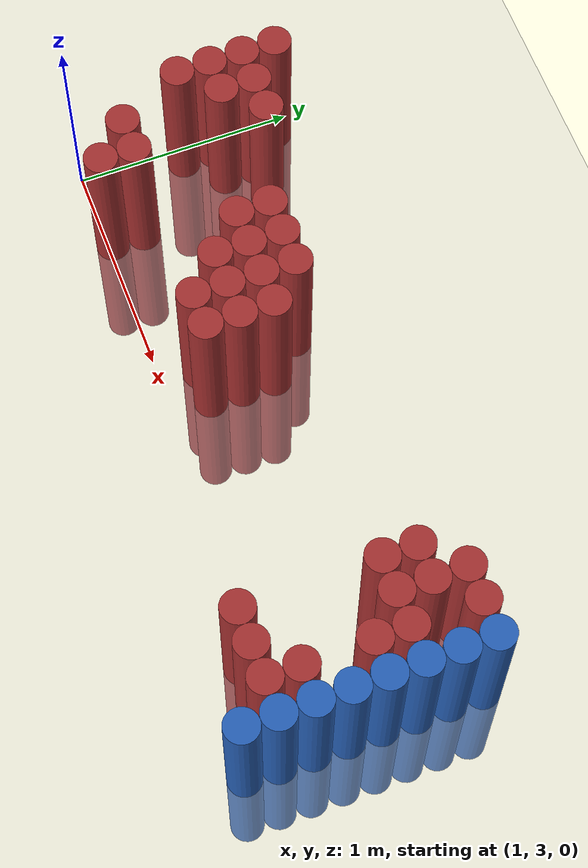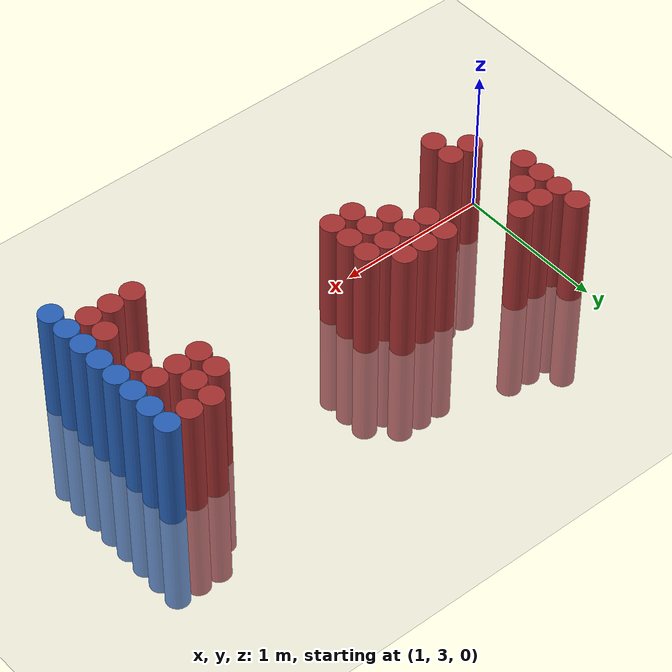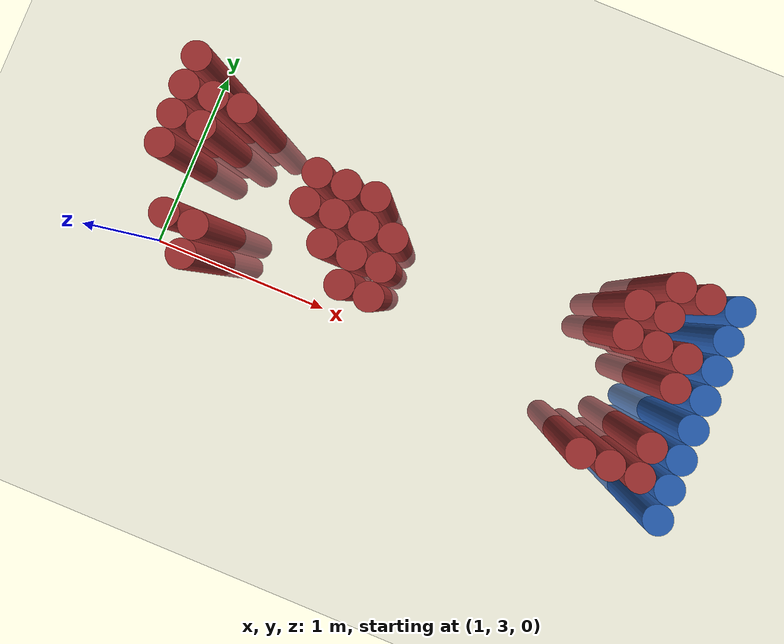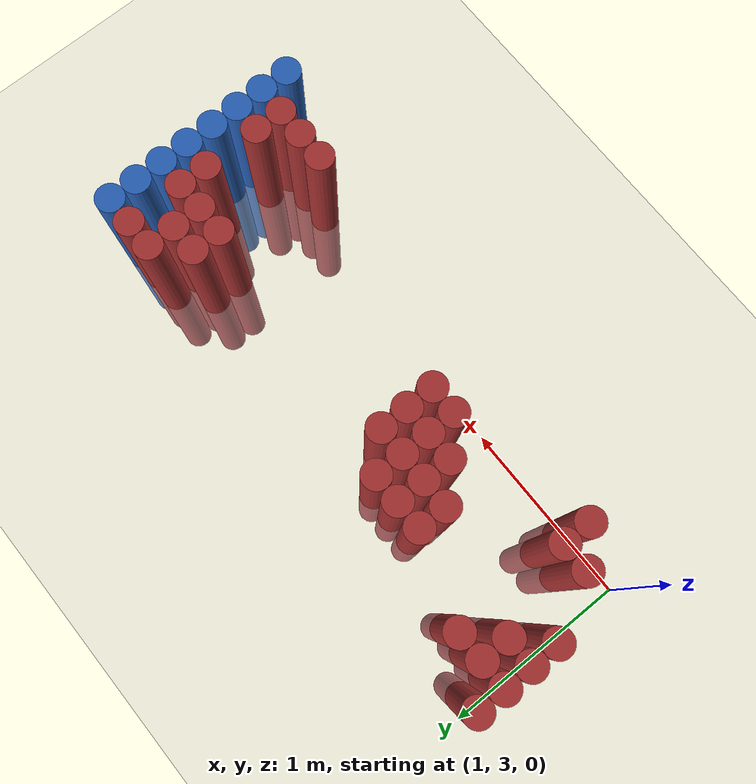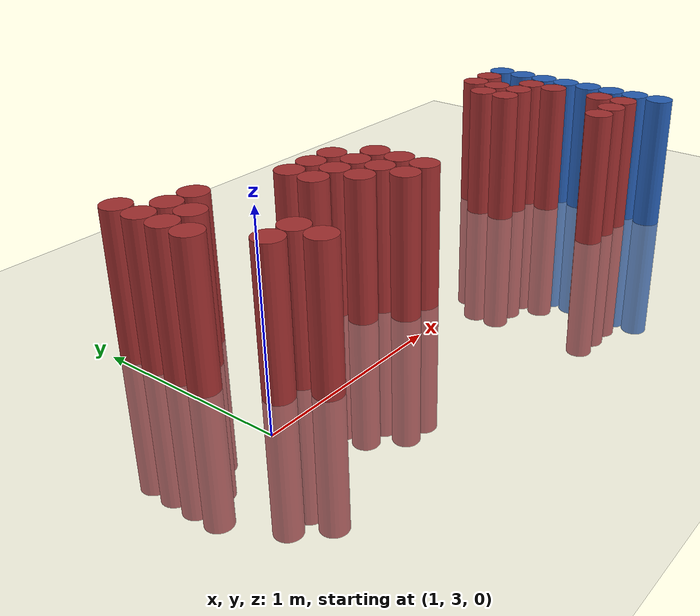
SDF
<sdf version="1.6">
 <world name="default">
  <model name="ground_plane">
   <static>1</static>
   <link name="link">
    <collision name="collision">
     <geometry><plane><normal>0 0 1</normal><size>100 100</size></plane></geometry>
     <surface><friction><ode><mu>100</mu><mu2>50</mu2></ode></friction></surface>
    </collision>
    <visual name="visual">
     <cast_shadows>0</cast_shadows>
     <geometry><plane><normal>0 0 1</normal><size>100 100</size></plane></geometry>
     <material>
      <script><uri>file://media/materials/scripts/gazebo.material</uri><name>Gazebo/Grey</name></script>
     </material>
    </visual>
   </link>
  </model>
  <model name="unit_cylinder_150">
   <static>1</static>
   <pose>3.925000 2.725000 0.000000 0.000000 0.000000 0.000000</pose>
   <link name="link">
    <inertial>
     <mass>1</mass>
     <inertia><ixx>0.145833</ixx><ixy>0</ixy><ixz>0</ixz><iyy>0.145833</iyy><iyz>0</iyz><izz>0.125</izz></inertia>
    </inertial>
    <collision name="collision">
     <geometry><cylinder><radius>0.075000</radius><length>1.5</length></cylinder></geometry>
    </collision>
    <visual name="visual">
     <geometry><cylinder><radius>0.075000</radius><length>1.5</length></cylinder></geometry>
     <material>
      <ambient>0.152000 0.379000 0.720000 1</ambient>
      <diffuse>0.152000 0.379000 0.720000 1</diffuse>
     </material>
     <material>
      <script><name>Gazebo/Grey</name><uri>file://media/materials/scripts/gazebo.material</uri></script>
     </material>
    </visual>
   </link>
  </model>
  <model name="unit_cylinder_152">
   <static>1</static>
   <pose>3.925000 2.875000 0.000000 0.000000 0.000000 0.000000</pose>
   <link name="link">
    <inertial>
     <mass>1</mass>
     <inertia><ixx>0.145833</ixx><ixy>0</ixy><ixz>0</ixz><iyy>0.145833</iyy><iyz>0</iyz><izz>0.125</izz></inertia>
    </inertial>
    <collision name="collision">
     <geometry><cylinder><radius>0.075000</radius><length>1.5</length></cylinder></geometry>
    </collision>
    <visual name="visual">
     <geometry><cylinder><radius>0.075000</radius><length>1.5</length></cylinder></geometry>
     <material>
      <ambient>0.152000 0.379000 0.720000 1</ambient>
      <diffuse>0.152000 0.379000 0.720000 1</diffuse>
     </material>
     <material>
      <script><name>Gazebo/Grey</name><uri>file://media/materials/scripts/gazebo.material</uri></script>
     </material>
    </visual>
   </link>
  </model>
  <model name="unit_cylinder_154">
   <static>1</static>
   <pose>3.925000 3.025000 0.000000 0.000000 0.000000 0.000000</pose>
   <link name="link">
    <inertial>
     <mass>1</mass>
     <inertia><ixx>0.145833</ixx><ixy>0</ixy><ixz>0</ixz><iyy>0.145833</iyy><iyz>0</iyz><izz>0.125</izz></inertia>
    </inertial>
    <collision name="collision">
     <geometry><cylinder><radius>0.075000</radius><length>1.5</length></cylinder></geometry>
    </collision>
    <visual name="visual">
     <geometry><cylinder><radius>0.075000</radius><length>1.5</length></cylinder></geometry>
     <material>
      <ambient>0.152000 0.379000 0.720000 1</ambient>
      <diffuse>0.152000 0.379000 0.720000 1</diffuse>
     </material>
     <material>
      <script><name>Gazebo/Grey</name><uri>file://media/materials/scripts/gazebo.material</uri></script>
     </material>
    </visual>
   </link>
  </model>
  <model name="unit_cylinder_156">
   <static>1</static>
   <pose>3.925000 3.175000 0.000000 0.000000 0.000000 0.000000</pose>
   <link name="link">
    <inertial>
     <mass>1</mass>
     <inertia><ixx>0.145833</ixx><ixy>0</ixy><ixz>0</ixz><iyy>0.145833</iyy><iyz>0</iyz><izz>0.125</izz></inertia>
    </inertial>
    <collision name="collision">
     <geometry><cylinder><radius>0.075000</radius><length>1.5</length></cylinder></geometry>
    </collision>
    <visual name="visual">
     <geometry><cylinder><radius>0.075000</radius><length>1.5</length></cylinder></geometry>
     <material>
      <ambient>0.152000 0.379000 0.720000 1</ambient>
      <diffuse>0.152000 0.379000 0.720000 1</diffuse>
     </material>
     <material>
      <script><name>Gazebo/Grey</name><uri>file://media/materials/scripts/gazebo.material</uri></script>
     </material>
    </visual>
   </link>
  </model>
  <model name="unit_cylinder_158">
   <static>1</static>
   <pose>3.925000 3.325000 0.000000 0.000000 0.000000 0.000000</pose>
   <link name="link">
    <inertial>
     <mass>1</mass>
     <inertia><ixx>0.145833</ixx><ixy>0</ixy><ixz>0</ixz><iyy>0.145833</iyy><iyz>0</iyz><izz>0.125</izz></inertia>
    </inertial>
    <collision name="collision">
     <geometry><cylinder><radius>0.075000</radius><length>1.5</length></cylinder></geometry>
    </collision>
    <visual name="visual">
     <geometry><cylinder><radius>0.075000</radius><length>1.5</length></cylinder></geometry>
     <material>
      <ambient>0.152000 0.379000 0.720000 1</ambient>
      <diffuse>0.152000 0.379000 0.720000 1</diffuse>
     </material>
     <material>
      <script><name>Gazebo/Grey</name><uri>file://media/materials/scripts/gazebo.material</uri></script>
     </material>
    </visual>
   </link>
  </model>
  <model name="unit_cylinder_160">
   <static>1</static>
   <pose>3.925000 3.475000 0.000000 0.000000 0.000000 0.000000</pose>
   <link name="link">
    <inertial>
     <mass>1</mass>
     <inertia><ixx>0.145833</ixx><ixy>0</ixy><ixz>0</ixz><iyy>0.145833</iyy><iyz>0</iyz><izz>0.125</izz></inertia>
    </inertial>
    <collision name="collision">
     <geometry><cylinder><radius>0.075000</radius><length>1.5</length></cylinder></geometry>
    </collision>
    <visual name="visual">
     <geometry><cylinder><radius>0.075000</radius><length>1.5</length></cylinder></geometry>
     <material>
      <ambient>0.152000 0.379000 0.720000 1</ambient>
      <diffuse>0.152000 0.379000 0.720000 1</diffuse>
     </material>
     <material>
      <script><name>Gazebo/Grey</name><uri>file://media/materials/scripts/gazebo.material</uri></script>
     </material>
    </visual>
   </link>
  </model>
  <model name="unit_cylinder_162">
   <static>1</static>
   <pose>3.925000 3.625000 0.000000 0.000000 0.000000 0.000000</pose>
   <link name="link">
    <inertial>
     <mass>1</mass>
     <inertia><ixx>0.145833</ixx><ixy>0</ixy><ixz>0</ixz><iyy>0.145833</iyy><iyz>0</iyz><izz>0.125</izz></inertia>
    </inertial>
    <collision name="collision">
     <geometry><cylinder><radius>0.075000</radius><length>1.5</length></cylinder></geometry>
    </collision>
    <visual name="visual">
     <geometry><cylinder><radius>0.075000</radius><length>1.5</length></cylinder></geometry>
     <material>
      <ambient>0.152000 0.379000 0.720000 1</ambient>
      <diffuse>0.152000 0.379000 0.720000 1</diffuse>
     </material>
     <material>
      <script><name>Gazebo/Grey</name><uri>file://media/materials/scripts/gazebo.material</uri></script>
     </material>
    </visual>
   </link>
  </model>
  <model name="unit_cylinder_164">
   <static>1</static>
   <pose>3.925000 3.775000 0.000000 0.000000 0.000000 0.000000</pose>
   <link name="link">
    <inertial>
     <mass>1</mass>
     <inertia><ixx>0.145833</ixx><ixy>0</ixy><ixz>0</ixz><iyy>0.145833</iyy><iyz>0</iyz><izz>0.125</izz></inertia>
    </inertial>
    <collision name="collision">
     <geometry><cylinder><radius>0.075000</radius><length>1.5</length></cylinder></geometry>
    </collision>
    <visual name="visual">
     <geometry><cylinder><radius>0.075000</radius><length>1.5</length></cylinder></geometry>
     <material>
      <ambient>0.152000 0.379000 0.720000 1</ambient>
      <diffuse>0.152000 0.379000 0.720000 1</diffuse>
     </material>
     <material>
      <script><name>Gazebo/Grey</name><uri>file://media/materials/scripts/gazebo.material</uri></script>
     </material>
    </visual>
   </link>
  </model>
  <model name="unit_cylinder_375">
   <static>1</static>
   <pose>1.075000 3.475000 0.000000 0.000000 0.000000 0.000000</pose>
   <link name="link">
    <inertial>
     <mass>1</mass>
     <inertia><ixx>0.145833</ixx><ixy>0</ixy><ixz>0</ixz><iyy>0.145833</iyy><iyz>0</iyz><izz>0.125</izz></inertia>
    </inertial>
    <collision name="collision">
     <geometry><cylinder><radius>0.075000</radius><length>1.5</length></cylinder></geometry>
    </collision>
    <visual name="visual">
     <geometry><cylinder><radius>0.075000</radius><length>1.5</length></cylinder></geometry>
     <material>
      <ambient>0.648000 0.192000 0.192000 1</ambient>
      <diffuse>0.648000 0.192000 0.192000 1</diffuse>
     </material>
     <material>
      <script><name>Gazebo/Grey</name><uri>file://media/materials/scripts/gazebo.material</uri></script>
     </material>
    </visual>
   </link>
  </model>
  <model name="unit_cylinder_376">
   <static>1</static>
   <pose>1.075000 3.625000 0.000000 0.000000 0.000000 0.000000</pose>
   <link name="link">
    <inertial>
     <mass>1</mass>
     <inertia><ixx>0.145833</ixx><ixy>0</ixy><ixz>0</ixz><iyy>0.145833</iyy><iyz>0</iyz><izz>0.125</izz></inertia>
    </inertial>
    <collision name="collision">
     <geometry><cylinder><radius>0.075000</radius><length>1.5</length></cylinder></geometry>
    </collision>
    <visual name="visual">
     <geometry><cylinder><radius>0.075000</radius><length>1.5</length></cylinder></geometry>
     <material>
      <ambient>0.648000 0.192000 0.192000 1</ambient>
      <diffuse>0.648000 0.192000 0.192000 1</diffuse>
     </material>
     <material>
      <script><name>Gazebo/Grey</name><uri>file://media/materials/scripts/gazebo.material</uri></script>
     </material>
    </visual>
   </link>
  </model>
  <model name="unit_cylinder_377">
   <static>1</static>
   <pose>1.075000 3.775000 0.000000 0.000000 0.000000 0.000000</pose>
   <link name="link">
    <inertial>
     <mass>1</mass>
     <inertia><ixx>0.145833</ixx><ixy>0</ixy><ixz>0</ixz><iyy>0.145833</iyy><iyz>0</iyz><izz>0.125</izz></inertia>
    </inertial>
    <collision name="collision">
     <geometry><cylinder><radius>0.075000</radius><length>1.5</length></cylinder></geometry>
    </collision>
    <visual name="visual">
     <geometry><cylinder><radius>0.075000</radius><length>1.5</length></cylinder></geometry>
     <material>
      <ambient>0.648000 0.192000 0.192000 1</ambient>
      <diffuse>0.648000 0.192000 0.192000 1</diffuse>
     </material>
     <material>
      <script><name>Gazebo/Grey</name><uri>file://media/materials/scripts/gazebo.material</uri></script>
     </material>
    </visual>
   </link>
  </model>
  <model name="unit_cylinder_378">
   <static>1</static>
   <pose>1.075000 3.925000 0.000000 0.000000 0.000000 0.000000</pose>
   <link name="link">
    <inertial>
     <mass>1</mass>
     <inertia><ixx>0.145833</ixx><ixy>0</ixy><ixz>0</ixz><iyy>0.145833</iyy><iyz>0</iyz><izz>0.125</izz></inertia>
    </inertial>
    <collision name="collision">
     <geometry><cylinder><radius>0.075000</radius><length>1.5</length></cylinder></geometry>
    </collision>
    <visual name="visual">
     <geometry><cylinder><radius>0.075000</radius><length>1.5</length></cylinder></geometry>
     <material>
      <ambient>0.648000 0.192000 0.192000 1</ambient>
      <diffuse>0.648000 0.192000 0.192000 1</diffuse>
     </material>
     <material>
      <script><name>Gazebo/Grey</name><uri>file://media/materials/scripts/gazebo.material</uri></script>
     </material>
    </visual>
   </link>
  </model>
  <model name="unit_cylinder_384">
   <static>1</static>
   <pose>1.225000 3.175000 0.000000 0.000000 0.000000 0.000000</pose>
   <link name="link">
    <inertial>
     <mass>1</mass>
     <inertia><ixx>0.145833</ixx><ixy>0</ixy><ixz>0</ixz><iyy>0.145833</iyy><iyz>0</iyz><izz>0.125</izz></inertia>
    </inertial>
    <collision name="collision">
     <geometry><cylinder><radius>0.075000</radius><length>1.5</length></cylinder></geometry>
    </collision>
    <visual name="visual">
     <geometry><cylinder><radius>0.075000</radius><length>1.5</length></cylinder></geometry>
     <material>
      <ambient>0.648000 0.192000 0.192000 1</ambient>
      <diffuse>0.648000 0.192000 0.192000 1</diffuse>
     </material>
     <material>
      <script><name>Gazebo/Grey</name><uri>file://media/materials/scripts/gazebo.material</uri></script>
     </material>
    </visual>
   </link>
  </model>
  <model name="unit_cylinder_385">
   <static>1</static>
   <pose>1.225000 3.625000 0.000000 0.000000 0.000000 0.000000</pose>
   <link name="link">
    <inertial>
     <mass>1</mass>
     <inertia><ixx>0.145833</ixx><ixy>0</ixy><ixz>0</ixz><iyy>0.145833</iyy><iyz>0</iyz><izz>0.125</izz></inertia>
    </inertial>
    <collision name="collision">
     <geometry><cylinder><radius>0.075000</radius><length>1.5</length></cylinder></geometry>
    </collision>
    <visual name="visual">
     <geometry><cylinder><radius>0.075000</radius><length>1.5</length></cylinder></geometry>
     <material>
      <ambient>0.648000 0.192000 0.192000 1</ambient>
      <diffuse>0.648000 0.192000 0.192000 1</diffuse>
     </material>
     <material>
      <script><name>Gazebo/Grey</name><uri>file://media/materials/scripts/gazebo.material</uri></script>
     </material>
    </visual>
   </link>
  </model>
  <model name="unit_cylinder_386">
   <static>1</static>
   <pose>1.225000 3.775000 0.000000 0.000000 0.000000 0.000000</pose>
   <link name="link">
    <inertial>
     <mass>1</mass>
     <inertia><ixx>0.145833</ixx><ixy>0</ixy><ixz>0</ixz><iyy>0.145833</iyy><iyz>0</iyz><izz>0.125</izz></inertia>
    </inertial>
    <collision name="collision">
     <geometry><cylinder><radius>0.075000</radius><length>1.5</length></cylinder></geometry>
    </collision>
    <visual name="visual">
     <geometry><cylinder><radius>0.075000</radius><length>1.5</length></cylinder></geometry>
     <material>
      <ambient>0.648000 0.192000 0.192000 1</ambient>
      <diffuse>0.648000 0.192000 0.192000 1</diffuse>
     </material>
     <material>
      <script><name>Gazebo/Grey</name><uri>file://media/materials/scripts/gazebo.material</uri></script>
     </material>
    </visual>
   </link>
  </model>
  <model name="unit_cylinder_394">
   <static>1</static>
   <pose>1.375000 3.025000 0.000000 0.000000 0.000000 0.000000</pose>
   <link name="link">
    <inertial>
     <mass>1</mass>
     <inertia><ixx>0.145833</ixx><ixy>0</ixy><ixz>0</ixz><iyy>0.145833</iyy><iyz>0</iyz><izz>0.125</izz></inertia>
    </inertial>
    <collision name="collision">
     <geometry><cylinder><radius>0.075000</radius><length>1.5</length></cylinder></geometry>
    </collision>
    <visual name="visual">
     <geometry><cylinder><radius>0.075000</radius><length>1.5</length></cylinder></geometry>
     <material>
      <ambient>0.648000 0.192000 0.192000 1</ambient>
      <diffuse>0.648000 0.192000 0.192000 1</diffuse>
     </material>
     <material>
      <script><name>Gazebo/Grey</name><uri>file://media/materials/scripts/gazebo.material</uri></script>
     </material>
    </visual>
   </link>
  </model>
  <model name="unit_cylinder_395">
   <static>1</static>
   <pose>1.375000 3.175000 0.000000 0.000000 0.000000 0.000000</pose>
   <link name="link">
    <inertial>
     <mass>1</mass>
     <inertia><ixx>0.145833</ixx><ixy>0</ixy><ixz>0</ixz><iyy>0.145833</iyy><iyz>0</iyz><izz>0.125</izz></inertia>
    </inertial>
    <collision name="collision">
     <geometry><cylinder><radius>0.075000</radius><length>1.5</length></cylinder></geometry>
    </collision>
    <visual name="visual">
     <geometry><cylinder><radius>0.075000</radius><length>1.5</length></cylinder></geometry>
     <material>
      <ambient>0.648000 0.192000 0.192000 1</ambient>
      <diffuse>0.648000 0.192000 0.192000 1</diffuse>
     </material>
     <material>
      <script><name>Gazebo/Grey</name><uri>file://media/materials/scripts/gazebo.material</uri></script>
     </material>
    </visual>
   </link>
  </model>
  <model name="unit_cylinder_396">
   <static>1</static>
   <pose>1.375000 3.775000 0.000000 0.000000 0.000000 0.000000</pose>
   <link name="link">
    <inertial>
     <mass>1</mass>
     <inertia><ixx>0.145833</ixx><ixy>0</ixy><ixz>0</ixz><iyy>0.145833</iyy><iyz>0</iyz><izz>0.125</izz></inertia>
    </inertial>
    <collision name="collision">
     <geometry><cylinder><radius>0.075000</radius><length>1.5</length></cylinder></geometry>
    </collision>
    <visual name="visual">
     <geometry><cylinder><radius>0.075000</radius><length>1.5</length></cylinder></geometry>
     <material>
      <ambient>0.648000 0.192000 0.192000 1</ambient>
      <diffuse>0.648000 0.192000 0.192000 1</diffuse>
     </material>
     <material>
      <script><name>Gazebo/Grey</name><uri>file://media/materials/scripts/gazebo.material</uri></script>
     </material>
    </visual>
   </link>
  </model>
  <model name="unit_cylinder_414">
   <static>1</static>
   <pose>1.825000 3.475000 0.000000 0.000000 0.000000 0.000000</pose>
   <link name="link">
    <inertial>
     <mass>1</mass>
     <inertia><ixx>0.145833</ixx><ixy>0</ixy><ixz>0</ixz><iyy>0.145833</iyy><iyz>0</iyz><izz>0.125</izz></inertia>
    </inertial>
    <collision name="collision">
     <geometry><cylinder><radius>0.075000</radius><length>1.5</length></cylinder></geometry>
    </collision>
    <visual name="visual">
     <geometry><cylinder><radius>0.075000</radius><length>1.5</length></cylinder></geometry>
     <material>
      <ambient>0.648000 0.192000 0.192000 1</ambient>
      <diffuse>0.648000 0.192000 0.192000 1</diffuse>
     </material>
     <material>
      <script><name>Gazebo/Grey</name><uri>file://media/materials/scripts/gazebo.material</uri></script>
     </material>
    </visual>
   </link>
  </model>
  <model name="unit_cylinder_415">
   <static>1</static>
   <pose>1.825000 3.625000 0.000000 0.000000 0.000000 0.000000</pose>
   <link name="link">
    <inertial>
     <mass>1</mass>
     <inertia><ixx>0.145833</ixx><ixy>0</ixy><ixz>0</ixz><iyy>0.145833</iyy><iyz>0</iyz><izz>0.125</izz></inertia>
    </inertial>
    <collision name="collision">
     <geometry><cylinder><radius>0.075000</radius><length>1.5</length></cylinder></geometry>
    </collision>
    <visual name="visual">
     <geometry><cylinder><radius>0.075000</radius><length>1.5</length></cylinder></geometry>
     <material>
      <ambient>0.648000 0.192000 0.192000 1</ambient>
      <diffuse>0.648000 0.192000 0.192000 1</diffuse>
     </material>
     <material>
      <script><name>Gazebo/Grey</name><uri>file://media/materials/scripts/gazebo.material</uri></script>
     </material>
    </visual>
   </link>
  </model>
  <model name="unit_cylinder_422">
   <static>1</static>
   <pose>1.975000 3.325000 0.000000 0.000000 0.000000 0.000000</pose>
   <link name="link">
    <inertial>
     <mass>1</mass>
     <inertia><ixx>0.145833</ixx><ixy>0</ixy><ixz>0</ixz><iyy>0.145833</iyy><iyz>0</iyz><izz>0.125</izz></inertia>
    </inertial>
    <collision name="collision">
     <geometry><cylinder><radius>0.075000</radius><length>1.5</length></cylinder></geometry>
    </collision>
    <visual name="visual">
     <geometry><cylinder><radius>0.075000</radius><length>1.5</length></cylinder></geometry>
     <material>
      <ambient>0.648000 0.192000 0.192000 1</ambient>
      <diffuse>0.648000 0.192000 0.192000 1</diffuse>
     </material>
     <material>
      <script><name>Gazebo/Grey</name><uri>file://media/materials/scripts/gazebo.material</uri></script>
     </material>
    </visual>
   </link>
  </model>
  <model name="unit_cylinder_423">
   <static>1</static>
   <pose>1.975000 3.475000 0.000000 0.000000 0.000000 0.000000</pose>
   <link name="link">
    <inertial>
     <mass>1</mass>
     <inertia><ixx>0.145833</ixx><ixy>0</ixy><ixz>0</ixz><iyy>0.145833</iyy><iyz>0</iyz><izz>0.125</izz></inertia>
    </inertial>
    <collision name="collision">
     <geometry><cylinder><radius>0.075000</radius><length>1.5</length></cylinder></geometry>
    </collision>
    <visual name="visual">
     <geometry><cylinder><radius>0.075000</radius><length>1.5</length></cylinder></geometry>
     <material>
      <ambient>0.648000 0.192000 0.192000 1</ambient>
      <diffuse>0.648000 0.192000 0.192000 1</diffuse>
     </material>
     <material>
      <script><name>Gazebo/Grey</name><uri>file://media/materials/scripts/gazebo.material</uri></script>
     </material>
    </visual>
   </link>
  </model>
  <model name="unit_cylinder_424">
   <static>1</static>
   <pose>1.975000 3.625000 0.000000 0.000000 0.000000 0.000000</pose>
   <link name="link">
    <inertial>
     <mass>1</mass>
     <inertia><ixx>0.145833</ixx><ixy>0</ixy><ixz>0</ixz><iyy>0.145833</iyy><iyz>0</iyz><izz>0.125</izz></inertia>
    </inertial>
    <collision name="collision">
     <geometry><cylinder><radius>0.075000</radius><length>1.5</length></cylinder></geometry>
    </collision>
    <visual name="visual">
     <geometry><cylinder><radius>0.075000</radius><length>1.5</length></cylinder></geometry>
     <material>
      <ambient>0.648000 0.192000 0.192000 1</ambient>
      <diffuse>0.648000 0.192000 0.192000 1</diffuse>
     </material>
     <material>
      <script><name>Gazebo/Grey</name><uri>file://media/materials/scripts/gazebo.material</uri></script>
     </material>
    </visual>
   </link>
  </model>
  <model name="unit_cylinder_428">
   <static>1</static>
   <pose>2.125000 3.175000 0.000000 0.000000 0.000000 0.000000</pose>
   <link name="link">
    <inertial>
     <mass>1</mass>
     <inertia><ixx>0.145833</ixx><ixy>0</ixy><ixz>0</ixz><iyy>0.145833</iyy><iyz>0</iyz><izz>0.125</izz></inertia>
    </inertial>
    <collision name="collision">
     <geometry><cylinder><radius>0.075000</radius><length>1.5</length></cylinder></geometry>
    </collision>
    <visual name="visual">
     <geometry><cylinder><radius>0.075000</radius><length>1.5</length></cylinder></geometry>
     <material>
      <ambient>0.648000 0.192000 0.192000 1</ambient>
      <diffuse>0.648000 0.192000 0.192000 1</diffuse>
     </material>
     <material>
      <script><name>Gazebo/Grey</name><uri>file://media/materials/scripts/gazebo.material</uri></script>
     </material>
    </visual>
   </link>
  </model>
  <model name="unit_cylinder_429">
   <static>1</static>
   <pose>2.125000 3.325000 0.000000 0.000000 0.000000 0.000000</pose>
   <link name="link">
    <inertial>
     <mass>1</mass>
     <inertia><ixx>0.145833</ixx><ixy>0</ixy><ixz>0</ixz><iyy>0.145833</iyy><iyz>0</iyz><izz>0.125</izz></inertia>
    </inertial>
    <collision name="collision">
     <geometry><cylinder><radius>0.075000</radius><length>1.5</length></cylinder></geometry>
    </collision>
    <visual name="visual">
     <geometry><cylinder><radius>0.075000</radius><length>1.5</length></cylinder></geometry>
     <material>
      <ambient>0.648000 0.192000 0.192000 1</ambient>
      <diffuse>0.648000 0.192000 0.192000 1</diffuse>
     </material>
     <material>
      <script><name>Gazebo/Grey</name><uri>file://media/materials/scripts/gazebo.material</uri></script>
     </material>
    </visual>
   </link>
  </model>
  <model name="unit_cylinder_430">
   <static>1</static>
   <pose>2.125000 3.475000 0.000000 0.000000 0.000000 0.000000</pose>
   <link name="link">
    <inertial>
     <mass>1</mass>
     <inertia><ixx>0.145833</ixx><ixy>0</ixy><ixz>0</ixz><iyy>0.145833</iyy><iyz>0</iyz><izz>0.125</izz></inertia>
    </inertial>
    <collision name="collision">
     <geometry><cylinder><radius>0.075000</radius><length>1.5</length></cylinder></geometry>
    </collision>
    <visual name="visual">
     <geometry><cylinder><radius>0.075000</radius><length>1.5</length></cylinder></geometry>
     <material>
      <ambient>0.648000 0.192000 0.192000 1</ambient>
      <diffuse>0.648000 0.192000 0.192000 1</diffuse>
     </material>
     <material>
      <script><name>Gazebo/Grey</name><uri>file://media/materials/scripts/gazebo.material</uri></script>
     </material>
    </visual>
   </link>
  </model>
  <model name="unit_cylinder_431">
   <static>1</static>
   <pose>2.125000 3.625000 0.000000 0.000000 0.000000 0.000000</pose>
   <link name="link">
    <inertial>
     <mass>1</mass>
     <inertia><ixx>0.145833</ixx><ixy>0</ixy><ixz>0</ixz><iyy>0.145833</iyy><iyz>0</iyz><izz>0.125</izz></inertia>
    </inertial>
    <collision name="collision">
     <geometry><cylinder><radius>0.075000</radius><length>1.5</length></cylinder></geometry>
    </collision>
    <visual name="visual">
     <geometry><cylinder><radius>0.075000</radius><length>1.5</length></cylinder></geometry>
     <material>
      <ambient>0.648000 0.192000 0.192000 1</ambient>
      <diffuse>0.648000 0.192000 0.192000 1</diffuse>
     </material>
     <material>
      <script><name>Gazebo/Grey</name><uri>file://media/materials/scripts/gazebo.material</uri></script>
     </material>
    </visual>
   </link>
  </model>
  <model name="unit_cylinder_435">
   <static>1</static>
   <pose>2.275000 3.175000 0.000000 0.000000 0.000000 0.000000</pose>
   <link name="link">
    <inertial>
     <mass>1</mass>
     <inertia><ixx>0.145833</ixx><ixy>0</ixy><ixz>0</ixz><iyy>0.145833</iyy><iyz>0</iyz><izz>0.125</izz></inertia>
    </inertial>
    <collision name="collision">
     <geometry><cylinder><radius>0.075000</radius><length>1.5</length></cylinder></geometry>
    </collision>
    <visual name="visual">
     <geometry><cylinder><radius>0.075000</radius><length>1.5</length></cylinder></geometry>
     <material>
      <ambient>0.648000 0.192000 0.192000 1</ambient>
      <diffuse>0.648000 0.192000 0.192000 1</diffuse>
     </material>
     <material>
      <script><name>Gazebo/Grey</name><uri>file://media/materials/scripts/gazebo.material</uri></script>
     </material>
    </visual>
   </link>
  </model>
  <model name="unit_cylinder_436">
   <static>1</static>
   <pose>2.275000 3.325000 0.000000 0.000000 0.000000 0.000000</pose>
   <link name="link">
    <inertial>
     <mass>1</mass>
     <inertia><ixx>0.145833</ixx><ixy>0</ixy><ixz>0</ixz><iyy>0.145833</iyy><iyz>0</iyz><izz>0.125</izz></inertia>
    </inertial>
    <collision name="collision">
     <geometry><cylinder><radius>0.075000</radius><length>1.5</length></cylinder></geometry>
    </collision>
    <visual name="visual">
     <geometry><cylinder><radius>0.075000</radius><length>1.5</length></cylinder></geometry>
     <material>
      <ambient>0.648000 0.192000 0.192000 1</ambient>
      <diffuse>0.648000 0.192000 0.192000 1</diffuse>
     </material>
     <material>
      <script><name>Gazebo/Grey</name><uri>file://media/materials/scripts/gazebo.material</uri></script>
     </material>
    </visual>
   </link>
  </model>
  <model name="unit_cylinder_437">
   <static>1</static>
   <pose>2.275000 3.475000 0.000000 0.000000 0.000000 0.000000</pose>
   <link name="link">
    <inertial>
     <mass>1</mass>
     <inertia><ixx>0.145833</ixx><ixy>0</ixy><ixz>0</ixz><iyy>0.145833</iyy><iyz>0</iyz><izz>0.125</izz></inertia>
    </inertial>
    <collision name="collision">
     <geometry><cylinder><radius>0.075000</radius><length>1.5</length></cylinder></geometry>
    </collision>
    <visual name="visual">
     <geometry><cylinder><radius>0.075000</radius><length>1.5</length></cylinder></geometry>
     <material>
      <ambient>0.648000 0.192000 0.192000 1</ambient>
      <diffuse>0.648000 0.192000 0.192000 1</diffuse>
     </material>
     <material>
      <script><name>Gazebo/Grey</name><uri>file://media/materials/scripts/gazebo.material</uri></script>
     </material>
    </visual>
   </link>
  </model>
  <model name="unit_cylinder_462">
   <static>1</static>
   <pose>3.475000 2.875000 0.000000 0.000000 0.000000 0.000000</pose>
   <link name="link">
    <inertial>
     <mass>1</mass>
     <inertia><ixx>0.145833</ixx><ixy>0</ixy><ixz>0</ixz><iyy>0.145833</iyy><iyz>0</iyz><izz>0.125</izz></inertia>
    </inertial>
    <collision name="collision">
     <geometry><cylinder><radius>0.075000</radius><length>1.5</length></cylinder></geometry>
    </collision>
    <visual name="visual">
     <geometry><cylinder><radius>0.075000</radius><length>1.5</length></cylinder></geometry>
     <material>
      <ambient>0.648000 0.192000 0.192000 1</ambient>
      <diffuse>0.648000 0.192000 0.192000 1</diffuse>
     </material>
     <material>
      <script><name>Gazebo/Grey</name><uri>file://media/materials/scripts/gazebo.material</uri></script>
     </material>
    </visual>
   </link>
  </model>
  <model name="unit_cylinder_463">
   <static>1</static>
   <pose>3.475000 3.475000 0.000000 0.000000 0.000000 0.000000</pose>
   <link name="link">
    <inertial>
     <mass>1</mass>
     <inertia><ixx>0.145833</ixx><ixy>0</ixy><ixz>0</ixz><iyy>0.145833</iyy><iyz>0</iyz><izz>0.125</izz></inertia>
    </inertial>
    <collision name="collision">
     <geometry><cylinder><radius>0.075000</radius><length>1.5</length></cylinder></geometry>
    </collision>
    <visual name="visual">
     <geometry><cylinder><radius>0.075000</radius><length>1.5</length></cylinder></geometry>
     <material>
      <ambient>0.648000 0.192000 0.192000 1</ambient>
      <diffuse>0.648000 0.192000 0.192000 1</diffuse>
     </material>
     <material>
      <script><name>Gazebo/Grey</name><uri>file://media/materials/scripts/gazebo.material</uri></script>
     </material>
    </visual>
   </link>
  </model>
  <model name="unit_cylinder_464">
   <static>1</static>
   <pose>3.475000 3.625000 0.000000 0.000000 0.000000 0.000000</pose>
   <link name="link">
    <inertial>
     <mass>1</mass>
     <inertia><ixx>0.145833</ixx><ixy>0</ixy><ixz>0</ixz><iyy>0.145833</iyy><iyz>0</iyz><izz>0.125</izz></inertia>
    </inertial>
    <collision name="collision">
     <geometry><cylinder><radius>0.075000</radius><length>1.5</length></cylinder></geometry>
    </collision>
    <visual name="visual">
     <geometry><cylinder><radius>0.075000</radius><length>1.5</length></cylinder></geometry>
     <material>
      <ambient>0.648000 0.192000 0.192000 1</ambient>
      <diffuse>0.648000 0.192000 0.192000 1</diffuse>
     </material>
     <material>
      <script><name>Gazebo/Grey</name><uri>file://media/materials/scripts/gazebo.material</uri></script>
     </material>
    </visual>
   </link>
  </model>
  <model name="unit_cylinder_473">
   <static>1</static>
   <pose>3.625000 2.875000 0.000000 0.000000 0.000000 0.000000</pose>
   <link name="link">
    <inertial>
     <mass>1</mass>
     <inertia><ixx>0.145833</ixx><ixy>0</ixy><ixz>0</ixz><iyy>0.145833</iyy><iyz>0</iyz><izz>0.125</izz></inertia>
    </inertial>
    <collision name="collision">
     <geometry><cylinder><radius>0.075000</radius><length>1.5</length></cylinder></geometry>
    </collision>
    <visual name="visual">
     <geometry><cylinder><radius>0.075000</radius><length>1.5</length></cylinder></geometry>
     <material>
      <ambient>0.648000 0.192000 0.192000 1</ambient>
      <diffuse>0.648000 0.192000 0.192000 1</diffuse>
     </material>
     <material>
      <script><name>Gazebo/Grey</name><uri>file://media/materials/scripts/gazebo.material</uri></script>
     </material>
    </visual>
   </link>
  </model>
  <model name="unit_cylinder_474">
   <static>1</static>
   <pose>3.625000 3.475000 0.000000 0.000000 0.000000 0.000000</pose>
   <link name="link">
    <inertial>
     <mass>1</mass>
     <inertia><ixx>0.145833</ixx><ixy>0</ixy><ixz>0</ixz><iyy>0.145833</iyy><iyz>0</iyz><izz>0.125</izz></inertia>
    </inertial>
    <collision name="collision">
     <geometry><cylinder><radius>0.075000</radius><length>1.5</length></cylinder></geometry>
    </collision>
    <visual name="visual">
     <geometry><cylinder><radius>0.075000</radius><length>1.5</length></cylinder></geometry>
     <material>
      <ambient>0.648000 0.192000 0.192000 1</ambient>
      <diffuse>0.648000 0.192000 0.192000 1</diffuse>
     </material>
     <material>
      <script><name>Gazebo/Grey</name><uri>file://media/materials/scripts/gazebo.material</uri></script>
     </material>
    </visual>
   </link>
  </model>
  <model name="unit_cylinder_475">
   <static>1</static>
   <pose>3.625000 3.625000 0.000000 0.000000 0.000000 0.000000</pose>
   <link name="link">
    <inertial>
     <mass>1</mass>
     <inertia><ixx>0.145833</ixx><ixy>0</ixy><ixz>0</ixz><iyy>0.145833</iyy><iyz>0</iyz><izz>0.125</izz></inertia>
    </inertial>
    <collision name="collision">
     <geometry><cylinder><radius>0.075000</radius><length>1.5</length></cylinder></geometry>
    </collision>
    <visual name="visual">
     <geometry><cylinder><radius>0.075000</radius><length>1.5</length></cylinder></geometry>
     <material>
      <ambient>0.648000 0.192000 0.192000 1</ambient>
      <diffuse>0.648000 0.192000 0.192000 1</diffuse>
     </material>
     <material>
      <script><name>Gazebo/Grey</name><uri>file://media/materials/scripts/gazebo.material</uri></script>
     </material>
    </visual>
   </link>
  </model>
  <model name="unit_cylinder_476">
   <static>1</static>
   <pose>3.625000 3.775000 0.000000 0.000000 0.000000 0.000000</pose>
   <link name="link">
    <inertial>
     <mass>1</mass>
     <inertia><ixx>0.145833</ixx><ixy>0</ixy><ixz>0</ixz><iyy>0.145833</iyy><iyz>0</iyz><izz>0.125</izz></inertia>
    </inertial>
    <collision name="collision">
     <geometry><cylinder><radius>0.075000</radius><length>1.5</length></cylinder></geometry>
    </collision>
    <visual name="visual">
     <geometry><cylinder><radius>0.075000</radius><length>1.5</length></cylinder></geometry>
     <material>
      <ambient>0.648000 0.192000 0.192000 1</ambient>
      <diffuse>0.648000 0.192000 0.192000 1</diffuse>
     </material>
     <material>
      <script><name>Gazebo/Grey</name><uri>file://media/materials/scripts/gazebo.material</uri></script>
     </material>
    </visual>
   </link>
  </model>
  <model name="unit_cylinder_490">
   <static>1</static>
   <pose>3.775000 2.875000 0.000000 0.000000 0.000000 0.000000</pose>
   <link name="link">
    <inertial>
     <mass>1</mass>
     <inertia><ixx>0.145833</ixx><ixy>0</ixy><ixz>0</ixz><iyy>0.145833</iyy><iyz>0</iyz><izz>0.125</izz></inertia>
    </inertial>
    <collision name="collision">
     <geometry><cylinder><radius>0.075000</radius><length>1.5</length></cylinder></geometry>
    </collision>
    <visual name="visual">
     <geometry><cylinder><radius>0.075000</radius><length>1.5</length></cylinder></geometry>
     <material>
      <ambient>0.648000 0.192000 0.192000 1</ambient>
      <diffuse>0.648000 0.192000 0.192000 1</diffuse>
     </material>
     <material>
      <script><name>Gazebo/Grey</name><uri>file://media/materials/scripts/gazebo.material</uri></script>
     </material>
    </visual>
   </link>
  </model>
  <model name="unit_cylinder_491">
   <static>1</static>
   <pose>3.775000 3.025000 0.000000 0.000000 0.000000 0.000000</pose>
   <link name="link">
    <inertial>
     <mass>1</mass>
     <inertia><ixx>0.145833</ixx><ixy>0</ixy><ixz>0</ixz><iyy>0.145833</iyy><iyz>0</iyz><izz>0.125</izz></inertia>
    </inertial>
    <collision name="collision">
     <geometry><cylinder><radius>0.075000</radius><length>1.5</length></cylinder></geometry>
    </collision>
    <visual name="visual">
     <geometry><cylinder><radius>0.075000</radius><length>1.5</length></cylinder></geometry>
     <material>
      <ambient>0.648000 0.192000 0.192000 1</ambient>
      <diffuse>0.648000 0.192000 0.192000 1</diffuse>
     </material>
     <material>
      <script><name>Gazebo/Grey</name><uri>file://media/materials/scripts/gazebo.material</uri></script>
     </material>
    </visual>
   </link>
  </model>
  <model name="unit_cylinder_492">
   <static>1</static>
   <pose>3.775000 3.325000 0.000000 0.000000 0.000000 0.000000</pose>
   <link name="link">
    <inertial>
     <mass>1</mass>
     <inertia><ixx>0.145833</ixx><ixy>0</ixy><ixz>0</ixz><iyy>0.145833</iyy><iyz>0</iyz><izz>0.125</izz></inertia>
    </inertial>
    <collision name="collision">
     <geometry><cylinder><radius>0.075000</radius><length>1.5</length></cylinder></geometry>
    </collision>
    <visual name="visual">
     <geometry><cylinder><radius>0.075000</radius><length>1.5</length></cylinder></geometry>
     <material>
      <ambient>0.648000 0.192000 0.192000 1</ambient>
      <diffuse>0.648000 0.192000 0.192000 1</diffuse>
     </material>
     <material>
      <script><name>Gazebo/Grey</name><uri>file://media/materials/scripts/gazebo.material</uri></script>
     </material>
    </visual>
   </link>
  </model>
  <model name="unit_cylinder_493">
   <static>1</static>
   <pose>3.775000 3.475000 0.000000 0.000000 0.000000 0.000000</pose>
   <link name="link">
    <inertial>
     <mass>1</mass>
     <inertia><ixx>0.145833</ixx><ixy>0</ixy><ixz>0</ixz><iyy>0.145833</iyy><iyz>0</iyz><izz>0.125</izz></inertia>
    </inertial>
    <collision name="collision">
     <geometry><cylinder><radius>0.075000</radius><length>1.5</length></cylinder></geometry>
    </collision>
    <visual name="visual">
     <geometry><cylinder><radius>0.075000</radius><length>1.5</length></cylinder></geometry>
     <material>
      <ambient>0.648000 0.192000 0.192000 1</ambient>
      <diffuse>0.648000 0.192000 0.192000 1</diffuse>
     </material>
     <material>
      <script><name>Gazebo/Grey</name><uri>file://media/materials/scripts/gazebo.material</uri></script>
     </material>
    </visual>
   </link>
  </model>
  <model name="unit_cylinder_494">
   <static>1</static>
   <pose>3.775000 3.775000 0.000000 0.000000 0.000000 0.000000</pose>
   <link name="link">
    <inertial>
     <mass>1</mass>
     <inertia><ixx>0.145833</ixx><ixy>0</ixy><ixz>0</ixz><iyy>0.145833</iyy><iyz>0</iyz><izz>0.125</izz></inertia>
    </inertial>
    <collision name="collision">
     <geometry><cylinder><radius>0.075000</radius><length>1.5</length></cylinder></geometry>
    </collision>
    <visual name="visual">
     <geometry><cylinder><radius>0.075000</radius><length>1.5</length></cylinder></geometry>
     <material>
      <ambient>0.648000 0.192000 0.192000 1</ambient>
      <diffuse>0.648000 0.192000 0.192000 1</diffuse>
     </material>
     <material>
      <script><name>Gazebo/Grey</name><uri>file://media/materials/scripts/gazebo.material</uri></script>
     </material>
    </visual>
   </link>
  </model>
  <model name="unit_cylinder_529">
   <static>1</static>
   <pose>3.925000 2.725000 0.000000 0.000000 0.000000 0.000000</pose>
   <link name="link">
    <inertial>
     <mass>1</mass>
     <inertia><ixx>0.145833</ixx><ixy>0</ixy><ixz>0</ixz><iyy>0.145833</iyy><iyz>0</iyz><izz>0.125</izz></inertia>
    </inertial>
    <collision name="collision">
     <geometry><cylinder><radius>0.075000</radius><length>1.5</length></cylinder></geometry>
    </collision>
    <visual name="visual">
     <geometry><cylinder><radius>0.075000</radius><length>1.5</length></cylinder></geometry>
     <material>
      <ambient>0.152000 0.379000 0.720000 1</ambient>
      <diffuse>0.152000 0.379000 0.720000 1</diffuse>
     </material>
     <material>
      <script><name>Gazebo/Grey</name><uri>file://media/materials/scripts/gazebo.material</uri></script>
     </material>
    </visual>
   </link>
  </model>
  <model name="unit_cylinder_530">
   <static>1</static>
   <pose>3.925000 2.875000 0.000000 0.000000 0.000000 0.000000</pose>
   <link name="link">
    <inertial>
     <mass>1</mass>
     <inertia><ixx>0.145833</ixx><ixy>0</ixy><ixz>0</ixz><iyy>0.145833</iyy><iyz>0</iyz><izz>0.125</izz></inertia>
    </inertial>
    <collision name="collision">
     <geometry><cylinder><radius>0.075000</radius><length>1.5</length></cylinder></geometry>
    </collision>
    <visual name="visual">
     <geometry><cylinder><radius>0.075000</radius><length>1.5</length></cylinder></geometry>
     <material>
      <ambient>0.152000 0.379000 0.720000 1</ambient>
      <diffuse>0.152000 0.379000 0.720000 1</diffuse>
     </material>
     <material>
      <script><name>Gazebo/Grey</name><uri>file://media/materials/scripts/gazebo.material</uri></script>
     </material>
    </visual>
   </link>
  </model>
  <model name="unit_cylinder_531">
   <static>1</static>
   <pose>3.925000 3.025000 0.000000 0.000000 0.000000 0.000000</pose>
   <link name="link">
    <inertial>
     <mass>1</mass>
     <inertia><ixx>0.145833</ixx><ixy>0</ixy><ixz>0</ixz><iyy>0.145833</iyy><iyz>0</iyz><izz>0.125</izz></inertia>
    </inertial>
    <collision name="collision">
     <geometry><cylinder><radius>0.075000</radius><length>1.5</length></cylinder></geometry>
    </collision>
    <visual name="visual">
     <geometry><cylinder><radius>0.075000</radius><length>1.5</length></cylinder></geometry>
     <material>
      <ambient>0.152000 0.379000 0.720000 1</ambient>
      <diffuse>0.152000 0.379000 0.720000 1</diffuse>
     </material>
     <material>
      <script><name>Gazebo/Grey</name><uri>file://media/materials/scripts/gazebo.material</uri></script>
     </material>
    </visual>
   </link>
  </model>
  <model name="unit_cylinder_532">
   <static>1</static>
   <pose>3.925000 3.175000 0.000000 0.000000 0.000000 0.000000</pose>
   <link name="link">
    <inertial>
     <mass>1</mass>
     <inertia><ixx>0.145833</ixx><ixy>0</ixy><ixz>0</ixz><iyy>0.145833</iyy><iyz>0</iyz><izz>0.125</izz></inertia>
    </inertial>
    <collision name="collision">
     <geometry><cylinder><radius>0.075000</radius><length>1.5</length></cylinder></geometry>
    </collision>
    <visual name="visual">
     <geometry><cylinder><radius>0.075000</radius><length>1.5</length></cylinder></geometry>
     <material>
      <ambient>0.152000 0.379000 0.720000 1</ambient>
      <diffuse>0.152000 0.379000 0.720000 1</diffuse>
     </material>
     <material>
      <script><name>Gazebo/Grey</name><uri>file://media/materials/scripts/gazebo.material</uri></script>
     </material>
    </visual>
   </link>
  </model>
  <model name="unit_cylinder_533">
   <static>1</static>
   <pose>3.925000 3.325000 0.000000 0.000000 0.000000 0.000000</pose>
   <link name="link">
    <inertial>
     <mass>1</mass>
     <inertia><ixx>0.145833</ixx><ixy>0</ixy><ixz>0</ixz><iyy>0.145833</iyy><iyz>0</iyz><izz>0.125</izz></inertia>
    </inertial>
    <collision name="collision">
     <geometry><cylinder><radius>0.075000</radius><length>1.5</length></cylinder></geometry>
    </collision>
    <visual name="visual">
     <geometry><cylinder><radius>0.075000</radius><length>1.5</length></cylinder></geometry>
     <material>
      <ambient>0.152000 0.379000 0.720000 1</ambient>
      <diffuse>0.152000 0.379000 0.720000 1</diffuse>
     </material>
     <material>
      <script><name>Gazebo/Grey</name><uri>file://media/materials/scripts/gazebo.material</uri></script>
     </material>
    </visual>
   </link>
  </model>
  <model name="unit_cylinder_534">
   <static>1</static>
   <pose>3.925000 3.475000 0.000000 0.000000 0.000000 0.000000</pose>
   <link name="link">
    <inertial>
     <mass>1</mass>
     <inertia><ixx>0.145833</ixx><ixy>0</ixy><ixz>0</ixz><iyy>0.145833</iyy><iyz>0</iyz><izz>0.125</izz></inertia>
    </inertial>
    <collision name="collision">
     <geometry><cylinder><radius>0.075000</radius><length>1.5</length></cylinder></geometry>
    </collision>
    <visual name="visual">
     <geometry><cylinder><radius>0.075000</radius><length>1.5</length></cylinder></geometry>
     <material>
      <ambient>0.152000 0.379000 0.720000 1</ambient>
      <diffuse>0.152000 0.379000 0.720000 1</diffuse>
     </material>
     <material>
      <script><name>Gazebo/Grey</name><uri>file://media/materials/scripts/gazebo.material</uri></script>
     </material>
    </visual>
   </link>
  </model>
  <model name="unit_cylinder_535">
   <static>1</static>
   <pose>3.925000 3.625000 0.000000 0.000000 0.000000 0.000000</pose>
   <link name="link">
    <inertial>
     <mass>1</mass>
     <inertia><ixx>0.145833</ixx><ixy>0</ixy><ixz>0</ixz><iyy>0.145833</iyy><iyz>0</iyz><izz>0.125</izz></inertia>
    </inertial>
    <collision name="collision">
     <geometry><cylinder><radius>0.075000</radius><length>1.5</length></cylinder></geometry>
    </collision>
    <visual name="visual">
     <geometry><cylinder><radius>0.075000</radius><length>1.5</length></cylinder></geometry>
     <material>
      <ambient>0.152000 0.379000 0.720000 1</ambient>
      <diffuse>0.152000 0.379000 0.720000 1</diffuse>
     </material>
     <material>
      <script><name>Gazebo/Grey</name><uri>file://media/materials/scripts/gazebo.material</uri></script>
     </material>
    </visual>
   </link>
  </model>
  <model name="unit_cylinder_536">
   <static>1</static>
   <pose>3.925000 3.775000 0.000000 0.000000 0.000000 0.000000</pose>
   <link name="link">
    <inertial>
     <mass>1</mass>
     <inertia><ixx>0.145833</ixx><ixy>0</ixy><ixz>0</ixz><iyy>0.145833</iyy><iyz>0</iyz><izz>0.125</izz></inertia>
    </inertial>
    <collision name="collision">
     <geometry><cylinder><radius>0.075000</radius><length>1.5</length></cylinder></geometry>
    </collision>
    <visual name="visual">
     <geometry><cylinder><radius>0.075000</radius><length>1.5</length></cylinder></geometry>
     <material>
      <ambient>0.152000 0.379000 0.720000 1</ambient>
      <diffuse>0.152000 0.379000 0.720000 1</diffuse>
     </material>
     <material>
      <script><name>Gazebo/Grey</name><uri>file://media/materials/scripts/gazebo.material</uri></script>
     </material>
    </visual>
   </link>
  </model>
 </world>
</sdf>
